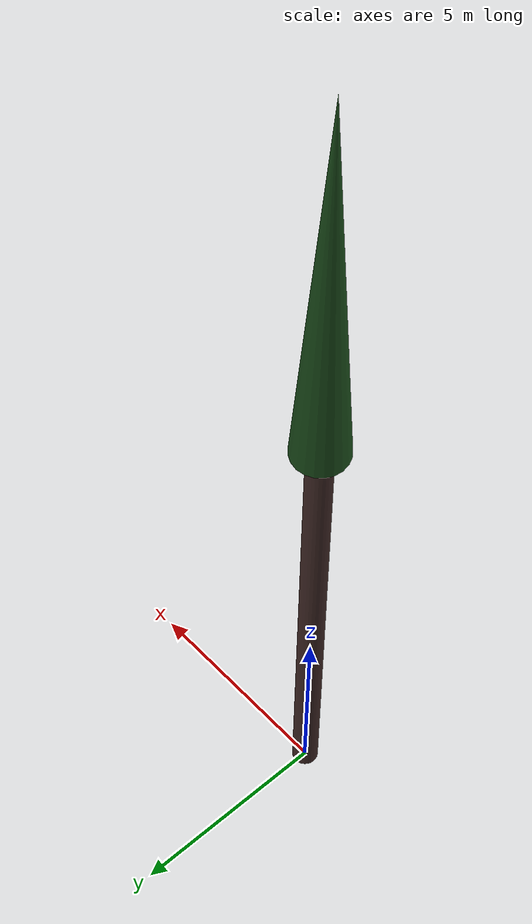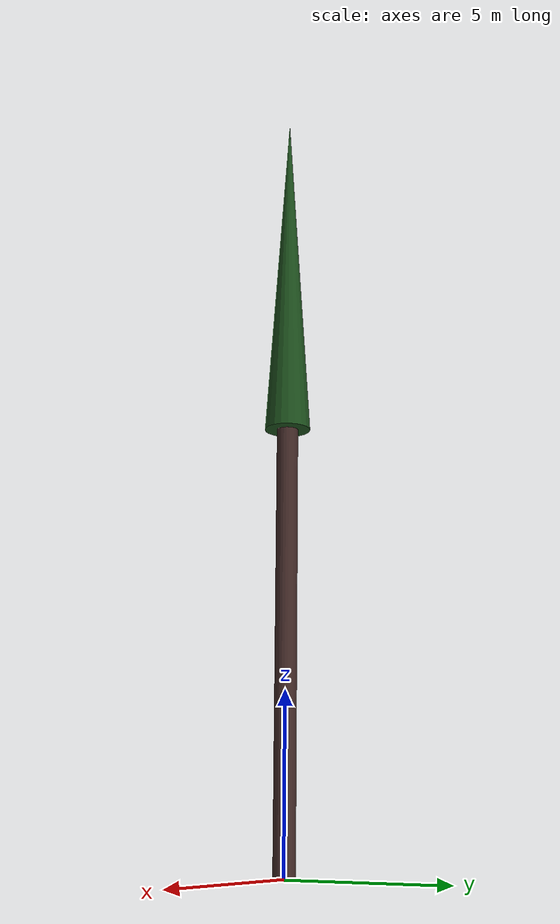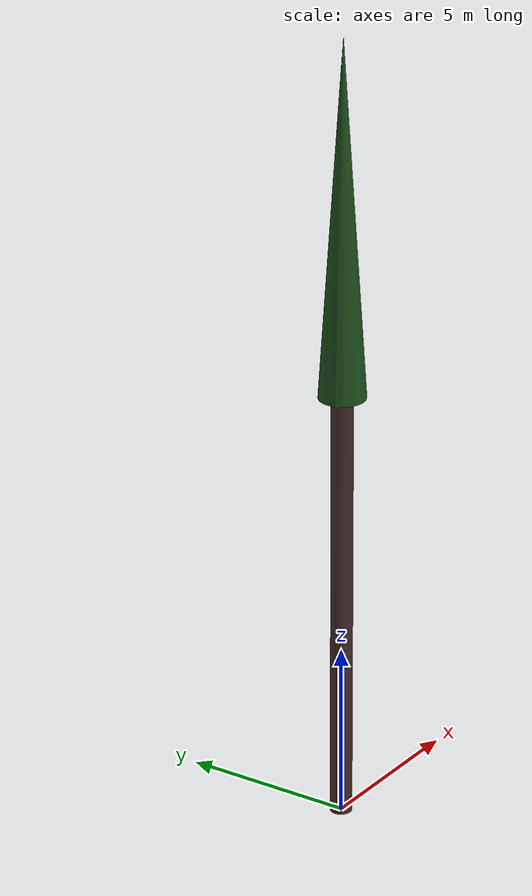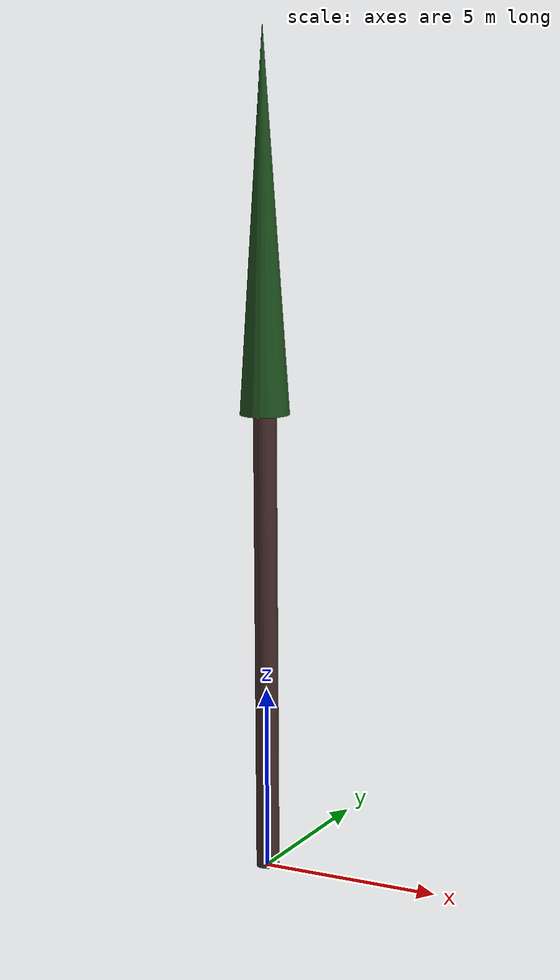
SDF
<?xml version="1.0" ?>
<sdf version="1.10">
  <model name="cypres_provence_07">
    <static>true</static>

    <!-- Tronc -->
    <link name="trunk">
      <pose>0 0 6.292494986236038 0 0 0</pose>
      <visual name="trunk_visual">
        <geometry>
          <cylinder>
            <radius>0.30972362447464485</radius>
            <length>12.584989972472076</length>
          </cylinder>
        </geometry>
        <material>
          <ambient>0.24 0.15 0.14 1</ambient>
          <diffuse>0.24 0.15 0.14 1</diffuse>
          <specular>0.1 0.1 0.1 1</specular>
        </material>
      </visual>
      <collision name="trunk_collision">
        <geometry>
          <cylinder>
            <radius>0.30972362447464485</radius>
            <length>12.584989972472076</length>
          </cylinder>
        </geometry>
      </collision>
    </link>

    <!-- Feuillage -->
    <link name="crown">
      <pose>0 0 17.702783184184266 0 0 0</pose>
      <visual name="crown_visual">
        <geometry>
          <cone>
              <radius>0.6671491186485031</radius>
              <length>10.23558642342438</length>
            </cone>
        </geometry>
        <material>
          <ambient>0.10 0.29 0.10 1</ambient>
          <diffuse>0.10 0.29 0.10 1</diffuse>
          <specular>0.1 0.1 0.1 1</specular>
        </material>
      </visual>
      <collision name="crown_collision">
        <geometry>
          <sphere>
            <radius>0.5337192949188025</radius>
          </sphere>
        </geometry>
      </collision>
    </link>

    <!-- Joint tronc-feuillage -->
    <joint name="trunk_crown_joint" type="fixed">
      <parent>trunk</parent>
      <child>crown</child>
    </joint>

  </model>
</sdf>
